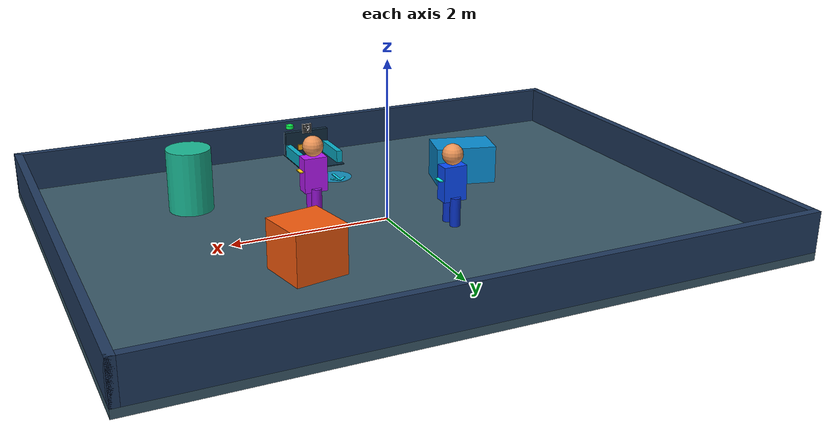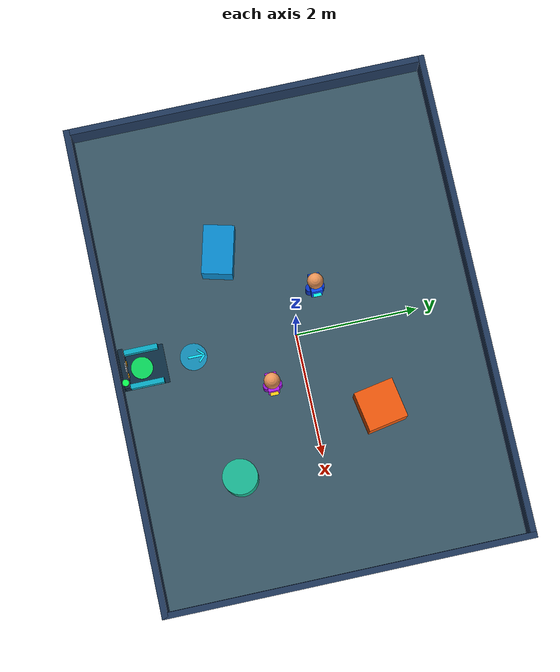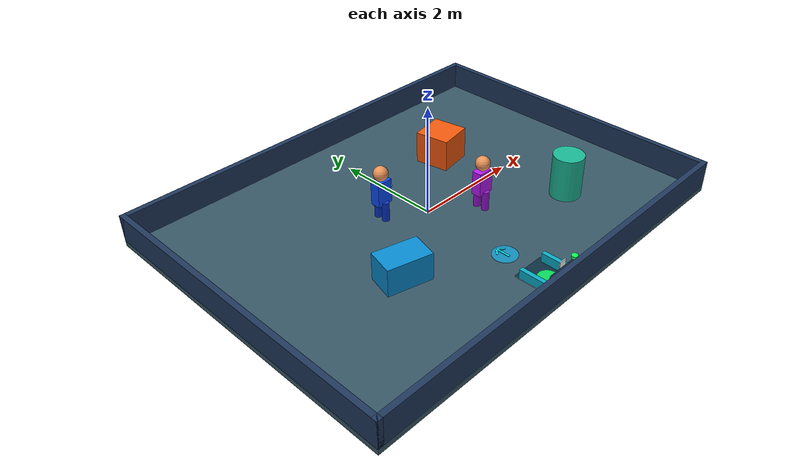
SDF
<?xml version="1.0"?>
<sdf version="1.9">
  <world name="companion_arena">
    <physics name="default_physics" type="ignored">
      <!-- 500 Hz remains stable for this slow rover and frees sensor/render CPU. -->
      <max_step_size>0.002</max_step_size>
      <real_time_factor>1.0</real_time_factor>
    </physics>

    <!-- Core Gazebo systems: physics, spawn/delete commands, and GUI updates. -->
    <plugin filename="gz-sim-physics-system"
            name="gz::sim::systems::Physics"/>
    <plugin filename="gz-sim-sensors-system"
            name="gz::sim::systems::Sensors">
      <render_engine>ogre2</render_engine>
    </plugin>
    <plugin filename="gz-sim-imu-system"
            name="gz::sim::systems::Imu"/>
    <plugin filename="gz-sim-user-commands-system"
            name="gz::sim::systems::UserCommands"/>
    <plugin filename="gz-sim-scene-broadcaster-system"
            name="gz::sim::systems::SceneBroadcaster"/>

    <scene>
      <ambient>0.55 0.55 0.55 1</ambient>
      <background>0.72 0.80 0.86 1</background>
      <shadows>true</shadows>
    </scene>

    <light name="sun" type="directional">
      <cast_shadows>true</cast_shadows>
      <pose>0 0 10 0 0 0</pose>
      <diffuse>0.90 0.90 0.88 1</diffuse>
      <specular>0.25 0.25 0.25 1</specular>
      <direction>-0.45 0.20 -0.87</direction>
    </light>

    <!-- An 8 x 6 metre floor. Its top surface is exactly at z = 0. -->
    <model name="arena_floor">
      <static>true</static>
      <pose>0 0 -0.05 0 0 0</pose>
      <link name="floor_link">
        <collision name="floor_collision">
          <geometry>
            <box>
              <size>8.0 6.0 0.1</size>
            </box>
          </geometry>
        </collision>
        <visual name="floor_visual">
          <geometry>
            <box>
              <size>8.0 6.0 0.1</size>
            </box>
          </geometry>
          <material>
            <ambient>0.17 0.24 0.29 1</ambient>
            <diffuse>0.22 0.34 0.40 1</diffuse>
            <specular>0.03 0.03 0.03 1</specular>
          </material>
        </visual>
      </link>
    </model>

    <!-- Four walls keep the robot inside the test area. -->
    <model name="north_wall">
      <static>true</static>
      <pose>0 2.95 0.25 0 0 0</pose>
      <link name="wall_link">
        <collision name="collision">
          <geometry><box><size>8.0 0.1 0.5</size></box></geometry>
        </collision>
        <visual name="visual">
          <geometry><box><size>8.0 0.1 0.5</size></box></geometry>
          <material>
            <ambient>0.08 0.12 0.20 1</ambient>
            <diffuse>0.12 0.22 0.36 1</diffuse>
          </material>
        </visual>
      </link>
    </model>
    <model name="south_wall">
      <static>true</static>
      <pose>0 -2.95 0.25 0 0 0</pose>
      <link name="wall_link">
        <collision name="collision">
          <geometry><box><size>8.0 0.1 0.5</size></box></geometry>
        </collision>
        <visual name="visual">
          <geometry><box><size>8.0 0.1 0.5</size></box></geometry>
          <material>
            <ambient>0.08 0.12 0.20 1</ambient>
            <diffuse>0.12 0.22 0.36 1</diffuse>
          </material>
        </visual>
      </link>
    </model>
    <model name="east_wall">
      <static>true</static>
      <pose>3.95 0 0.25 0 0 0</pose>
      <link name="wall_link">
        <collision name="collision">
          <geometry><box><size>0.1 6.0 0.5</size></box></geometry>
        </collision>
        <visual name="visual">
          <geometry><box><size>0.1 6.0 0.5</size></box></geometry>
          <material>
            <ambient>0.08 0.12 0.20 1</ambient>
            <diffuse>0.12 0.22 0.36 1</diffuse>
          </material>
        </visual>
      </link>
    </model>
    <model name="west_wall">
      <static>true</static>
      <pose>-3.95 0 0.25 0 0 0</pose>
      <link name="wall_link">
        <collision name="collision">
          <geometry><box><size>0.1 6.0 0.5</size></box></geometry>
        </collision>
        <visual name="visual">
          <geometry><box><size>0.1 6.0 0.5</size></box></geometry>
          <material>
            <ambient>0.08 0.12 0.20 1</ambient>
            <diffuse>0.12 0.22 0.36 1</diffuse>
          </material>
        </visual>
      </link>
    </model>

    <!-- Simple obstacles for later LiDAR, mapping, and navigation tests. -->
    <model name="orange_crate">
      <static>true</static>
      <pose>1.45 1.05 0.30 0 0 0.18</pose>
      <link name="crate_link">
        <collision name="collision">
          <geometry><box><size>0.65 0.65 0.60</size></box></geometry>
        </collision>
        <visual name="visual">
          <geometry><box><size>0.65 0.65 0.60</size></box></geometry>
          <material>
            <ambient>0.70 0.20 0.03 1</ambient>
            <diffuse>0.95 0.35 0.05 1</diffuse>
          </material>
        </visual>
      </link>
    </model>

    <model name="blue_crate">
      <static>true</static>
      <pose>-1.55 -0.95 0.25 0 0 -0.25</pose>
      <link name="crate_link">
        <collision name="collision">
          <geometry><box><size>0.80 0.50 0.50</size></box></geometry>
        </collision>
        <visual name="visual">
          <geometry><box><size>0.80 0.50 0.50</size></box></geometry>
          <material>
            <ambient>0.02 0.30 0.48 1</ambient>
            <diffuse>0.03 0.55 0.82 1</diffuse>
          </material>
        </visual>
      </link>
    </model>

    <model name="round_pillar">
      <static>true</static>
      <pose>2.10 -1.35 0.40 0 0 0</pose>
      <link name="pillar_link">
        <collision name="collision">
          <geometry><cylinder><radius>0.28</radius><length>0.80</length></cylinder></geometry>
        </collision>
        <visual name="visual">
          <geometry><cylinder><radius>0.28</radius><length>0.80</length></cylinder></geometry>
          <material>
            <ambient>0.08 0.42 0.35 1</ambient>
            <diffuse>0.10 0.72 0.58 1</diffuse>
          </material>
        </visual>
      </link>
    </model>

    <model name="moving_pedestrian">
      <static>false</static>
      <allow_auto_disable>false</allow_auto_disable>
      <pose>0.75 -0.55 0.45 0 0 0</pose>
      <!-- An invisible carriage provides the first axis of the X/Y stage. -->
      <link name="x_carriage_link">
        <gravity>false</gravity>
        <inertial>
          <mass>0.10</mass>
          <inertia>
            <ixx>0.001</ixx>
            <iyy>0.001</iyy>
            <izz>0.001</izz>
          </inertia>
        </inertial>
      </link>
      <link name="pedestrian_link">
        <gravity>false</gravity>
        <inertial>
          <mass>20.0</mass>
          <inertia>
            <ixx>1.592</ixx>
            <iyy>1.592</iyy>
            <izz>0.484</izz>
          </inertia>
        </inertial>
        <collision name="collision">
          <geometry>
            <cylinder><radius>0.22</radius><length>0.90</length></cylinder>
          </geometry>
          <surface>
            <friction>
              <ode><mu>0.8</mu><mu2>0.8</mu2></ode>
            </friction>
          </surface>
        </collision>
        <!-- Purple clothing gives the simulated vision detector a real image
             feature while the separate shapes keep the target human-like. -->
        <visual name="torso_visual">
          <pose>0 0 0.08 0 0 0</pose>
          <geometry>
            <box><size>0.30 0.18 0.44</size></box>
          </geometry>
          <material>
            <ambient>0.42 0.04 0.62 1</ambient>
            <diffuse>0.72 0.10 0.96 1</diffuse>
            <specular>0.30 0.12 0.42 1</specular>
          </material>
        </visual>
        <visual name="left_leg_visual">
          <pose>0 0.09 -0.27 0 0 0</pose>
          <geometry>
            <cylinder><radius>0.065</radius><length>0.36</length></cylinder>
          </geometry>
          <material>
            <ambient>0.30 0.03 0.46 1</ambient>
            <diffuse>0.58 0.07 0.82 1</diffuse>
          </material>
        </visual>
        <visual name="right_leg_visual">
          <pose>0 -0.09 -0.27 0 0 0</pose>
          <geometry>
            <cylinder><radius>0.065</radius><length>0.36</length></cylinder>
          </geometry>
          <material>
            <ambient>0.30 0.03 0.46 1</ambient>
            <diffuse>0.58 0.07 0.82 1</diffuse>
          </material>
        </visual>
        <visual name="head_visual">
          <pose>0 0 0.43 0 0 0</pose>
          <geometry><sphere><radius>0.13</radius></sphere></geometry>
          <material>
            <ambient>0.58 0.30 0.16 1</ambient>
            <diffuse>0.92 0.58 0.34 1</diffuse>
          </material>
        </visual>
        <visual name="identity_band">
          <pose>0.156 0 0.13 0 1.5708 0</pose>
          <geometry><box><size>0.012 0.13 0.09</size></box></geometry>
          <material>
            <ambient>0.95 0.62 0.03 1</ambient>
            <diffuse>1.00 0.82 0.08 1</diffuse>
            <emissive>0.20 0.08 0.00 1</emissive>
          </material>
        </visual>
      </link>
      <joint name="pedestrian_x_joint" type="prismatic">
        <parent>world</parent>
        <child>x_carriage_link</child>
        <axis>
          <xyz expressed_in="__model__">1 0 0</xyz>
          <limit>
            <lower>-1.85</lower>
            <upper>0.75</upper>
            <effort>500.0</effort>
            <velocity>0.35</velocity>
          </limit>
          <dynamics>
            <damping>0.2</damping>
          </dynamics>
        </axis>
      </joint>
      <joint name="pedestrian_y_joint" type="prismatic">
        <parent>x_carriage_link</parent>
        <child>pedestrian_link</child>
        <axis>
          <xyz expressed_in="__model__">0 1 0</xyz>
          <limit>
            <!-- The route reaches 0.10 m south and 1.10 m north of the
                 model's initial Y position. Keep a small physical margin. -->
            <lower>-0.15</lower>
            <upper>1.20</upper>
            <effort>500.0</effort>
            <velocity>0.35</velocity>
          </limit>
          <dynamics>
            <damping>0.2</damping>
          </dynamics>
        </axis>
      </joint>
      <plugin
        filename="gz-sim-joint-controller-system"
        name="gz::sim::systems::JointController">
        <joint_name>pedestrian_x_joint</joint_name>
      </plugin>
      <plugin
        filename="gz-sim-joint-controller-system"
        name="gz::sim::systems::JointController">
        <joint_name>pedestrian_y_joint</joint_name>
      </plugin>
    </model>

    <model name="moving_pedestrian_beta">
      <static>false</static>
      <allow_auto_disable>false</allow_auto_disable>
      <pose>-0.65 0.45 0.45 0 0 0</pose>
      <link name="x_carriage_link">
        <gravity>false</gravity>
        <inertial>
          <mass>0.10</mass>
          <inertia>
            <ixx>0.001</ixx>
            <iyy>0.001</iyy>
            <izz>0.001</izz>
          </inertia>
        </inertial>
      </link>
      <link name="pedestrian_link">
        <gravity>false</gravity>
        <inertial>
          <mass>20.0</mass>
          <inertia>
            <ixx>1.592</ixx>
            <iyy>1.592</iyy>
            <izz>0.484</izz>
          </inertia>
        </inertial>
        <collision name="collision">
          <geometry>
            <cylinder><radius>0.22</radius><length>0.90</length></cylinder>
          </geometry>
          <surface>
            <friction>
              <ode><mu>0.8</mu><mu2>0.8</mu2></ode>
            </friction>
          </surface>
        </collision>
        <visual name="torso_visual">
          <pose>0 0 0.08 0 0 0</pose>
          <geometry>
            <box><size>0.30 0.18 0.44</size></box>
          </geometry>
          <material>
            <ambient>0.02 0.12 0.52 1</ambient>
            <diffuse>0.04 0.30 0.98 1</diffuse>
            <specular>0.10 0.22 0.52 1</specular>
          </material>
        </visual>
        <visual name="left_leg_visual">
          <pose>0 0.09 -0.27 0 0 0</pose>
          <geometry>
            <cylinder><radius>0.065</radius><length>0.36</length></cylinder>
          </geometry>
          <material>
            <ambient>0.02 0.08 0.38 1</ambient>
            <diffuse>0.03 0.20 0.78 1</diffuse>
          </material>
        </visual>
        <visual name="right_leg_visual">
          <pose>0 -0.09 -0.27 0 0 0</pose>
          <geometry>
            <cylinder><radius>0.065</radius><length>0.36</length></cylinder>
          </geometry>
          <material>
            <ambient>0.02 0.08 0.38 1</ambient>
            <diffuse>0.03 0.20 0.78 1</diffuse>
          </material>
        </visual>
        <visual name="head_visual">
          <pose>0 0 0.43 0 0 0</pose>
          <geometry><sphere><radius>0.13</radius></sphere></geometry>
          <material>
            <ambient>0.58 0.30 0.16 1</ambient>
            <diffuse>0.92 0.58 0.34 1</diffuse>
          </material>
        </visual>
        <visual name="identity_band">
          <pose>0.156 0 0.13 0 1.5708 0</pose>
          <geometry><box><size>0.012 0.13 0.09</size></box></geometry>
          <material>
            <ambient>0.02 0.90 0.82 1</ambient>
            <diffuse>0.04 1.00 0.92 1</diffuse>
            <emissive>0.00 0.18 0.16 1</emissive>
          </material>
        </visual>
      </link>
      <joint name="pedestrian_beta_x_joint" type="prismatic">
        <parent>world</parent>
        <child>x_carriage_link</child>
        <axis>
          <xyz expressed_in="__model__">1 0 0</xyz>
          <limit>
            <lower>-0.10</lower>
            <upper>1.35</upper>
            <effort>500.0</effort>
            <velocity>0.35</velocity>
          </limit>
          <dynamics><damping>0.2</damping></dynamics>
        </axis>
      </joint>
      <joint name="pedestrian_beta_y_joint" type="prismatic">
        <parent>x_carriage_link</parent>
        <child>pedestrian_link</child>
        <axis>
          <xyz expressed_in="__model__">0 1 0</xyz>
          <limit>
            <lower>-1.05</lower>
            <upper>0.10</upper>
            <effort>500.0</effort>
            <velocity>0.35</velocity>
          </limit>
          <dynamics><damping>0.2</damping></dynamics>
        </axis>
      </joint>
      <plugin
        filename="gz-sim-joint-controller-system"
        name="gz::sim::systems::JointController">
        <joint_name>pedestrian_beta_x_joint</joint_name>
      </plugin>
      <plugin
        filename="gz-sim-joint-controller-system"
        name="gz::sim::systems::JointController">
        <joint_name>pedestrian_beta_y_joint</joint_name>
      </plugin>
    </model>

    <model name="docking_station">
      <static>true</static>
      <pose>0 -2.52 0 0 0 0</pose>
      <link name="dock_link">
        <!-- A visual-only pad keeps the arena floor physically flat. -->
        <visual name="dock_pad">
          <pose>0 0 0.006 0 0 0</pose>
          <geometry><box><size>0.64 0.74 0.012</size></box></geometry>
          <material>
            <ambient>0.03 0.09 0.14 1</ambient>
            <diffuse>0.05 0.18 0.26 1</diffuse>
            <specular>0.18 0.28 0.32 1</specular>
          </material>
        </visual>

        <collision name="backplate_collision">
          <pose>0 -0.30 0.18 0 0 0</pose>
          <geometry><box><size>0.64 0.08 0.36</size></box></geometry>
        </collision>
        <visual name="backplate_visual">
          <pose>0 -0.30 0.18 0 0 0</pose>
          <geometry><box><size>0.64 0.08 0.36</size></box></geometry>
          <material>
            <ambient>0.03 0.08 0.13 1</ambient>
            <diffuse>0.06 0.16 0.24 1</diffuse>
            <specular>0.20 0.32 0.38 1</specular>
          </material>
        </visual>

        <collision name="left_guide_collision">
          <pose>0.28 0 0.09 0 0 0</pose>
          <geometry><box><size>0.08 0.58 0.18</size></box></geometry>
        </collision>
        <visual name="left_guide_visual">
          <pose>0.28 0 0.09 0 0 0</pose>
          <geometry><box><size>0.08 0.58 0.18</size></box></geometry>
          <material>
            <ambient>0.02 0.32 0.40 1</ambient>
            <diffuse>0.03 0.68 0.78 1</diffuse>
            <specular>0.35 0.55 0.62 1</specular>
          </material>
        </visual>

        <collision name="right_guide_collision">
          <pose>-0.28 0 0.09 0 0 0</pose>
          <geometry><box><size>0.08 0.58 0.18</size></box></geometry>
        </collision>
        <visual name="right_guide_visual">
          <pose>-0.28 0 0.09 0 0 0</pose>
          <geometry><box><size>0.08 0.58 0.18</size></box></geometry>
          <material>
            <ambient>0.02 0.32 0.40 1</ambient>
            <diffuse>0.03 0.68 0.78 1</diffuse>
            <specular>0.35 0.55 0.62 1</specular>
          </material>
        </visual>

        <!-- Gold charging contacts on the front face of the backplate. -->
        <visual name="left_contact">
          <pose>0.10 -0.253 0.13 0 0 0</pose>
          <geometry><box><size>0.08 0.015 0.08</size></box></geometry>
          <material>
            <ambient>0.70 0.40 0.04 1</ambient>
            <diffuse>1.00 0.68 0.08 1</diffuse>
            <specular>0.80 0.65 0.25 1</specular>
          </material>
        </visual>
        <visual name="right_contact">
          <pose>-0.10 -0.253 0.13 0 0 0</pose>
          <geometry><box><size>0.08 0.015 0.08</size></box></geometry>
          <material>
            <ambient>0.70 0.40 0.04 1</ambient>
            <diffuse>1.00 0.68 0.08 1</diffuse>
            <specular>0.80 0.65 0.25 1</specular>
          </material>
        </visual>

        <visual name="aruco_white_board">
          <pose>0 -0.252 0.40 0 0 0</pose>
          <geometry><box><size>0.140 0.012 0.140</size></box></geometry>
          <cast_shadows>false</cast_shadows>
          <material>
            <ambient>0.95 0.95 0.95 1</ambient>
            <diffuse>1.00 1.00 1.00 1</diffuse>
            <specular>0.05 0.05 0.05 1</specular>
          </material>
        </visual>
        <visual name="aruco_black_r0_c0">
          <pose>0.050 -0.243 0.45 0 0 0</pose>
          <geometry><box><size>0.020 0.004 0.020</size></box></geometry>
          <cast_shadows>false</cast_shadows>
          <material>
            <ambient>0.002 0.002 0.002 1</ambient>
            <diffuse>0.005 0.005 0.005 1</diffuse>
            <specular>0 0 0 1</specular>
          </material>
        </visual>
        <visual name="aruco_black_r0_c1">
          <pose>0.030 -0.243 0.45 0 0 0</pose>
          <geometry><box><size>0.020 0.004 0.020</size></box></geometry>
          <cast_shadows>false</cast_shadows>
          <material>
            <ambient>0.002 0.002 0.002 1</ambient>
            <diffuse>0.005 0.005 0.005 1</diffuse>
            <specular>0 0 0 1</specular>
          </material>
        </visual>
        <visual name="aruco_black_r0_c2">
          <pose>0.010 -0.243 0.45 0 0 0</pose>
          <geometry><box><size>0.020 0.004 0.020</size></box></geometry>
          <cast_shadows>false</cast_shadows>
          <material>
            <ambient>0.002 0.002 0.002 1</ambient>
            <diffuse>0.005 0.005 0.005 1</diffuse>
            <specular>0 0 0 1</specular>
          </material>
        </visual>
        <visual name="aruco_black_r0_c3">
          <pose>-0.010 -0.243 0.45 0 0 0</pose>
          <geometry><box><size>0.020 0.004 0.020</size></box></geometry>
          <cast_shadows>false</cast_shadows>
          <material>
            <ambient>0.002 0.002 0.002 1</ambient>
            <diffuse>0.005 0.005 0.005 1</diffuse>
            <specular>0 0 0 1</specular>
          </material>
        </visual>
        <visual name="aruco_black_r0_c4">
          <pose>-0.030 -0.243 0.45 0 0 0</pose>
          <geometry><box><size>0.020 0.004 0.020</size></box></geometry>
          <cast_shadows>false</cast_shadows>
          <material>
            <ambient>0.002 0.002 0.002 1</ambient>
            <diffuse>0.005 0.005 0.005 1</diffuse>
            <specular>0 0 0 1</specular>
          </material>
        </visual>
        <visual name="aruco_black_r0_c5">
          <pose>-0.050 -0.243 0.45 0 0 0</pose>
          <geometry><box><size>0.020 0.004 0.020</size></box></geometry>
          <cast_shadows>false</cast_shadows>
          <material>
            <ambient>0.002 0.002 0.002 1</ambient>
            <diffuse>0.005 0.005 0.005 1</diffuse>
            <specular>0 0 0 1</specular>
          </material>
        </visual>
        <visual name="aruco_black_r1_c0">
          <pose>0.050 -0.243 0.43 0 0 0</pose>
          <geometry><box><size>0.020 0.004 0.020</size></box></geometry>
          <cast_shadows>false</cast_shadows>
          <material>
            <ambient>0.002 0.002 0.002 1</ambient>
            <diffuse>0.005 0.005 0.005 1</diffuse>
            <specular>0 0 0 1</specular>
          </material>
        </visual>
        <visual name="aruco_black_r1_c2">
          <pose>0.010 -0.243 0.43 0 0 0</pose>
          <geometry><box><size>0.020 0.004 0.020</size></box></geometry>
          <cast_shadows>false</cast_shadows>
          <material>
            <ambient>0.002 0.002 0.002 1</ambient>
            <diffuse>0.005 0.005 0.005 1</diffuse>
            <specular>0 0 0 1</specular>
          </material>
        </visual>
        <visual name="aruco_black_r1_c5">
          <pose>-0.050 -0.243 0.43 0 0 0</pose>
          <geometry><box><size>0.020 0.004 0.020</size></box></geometry>
          <cast_shadows>false</cast_shadows>
          <material>
            <ambient>0.002 0.002 0.002 1</ambient>
            <diffuse>0.005 0.005 0.005 1</diffuse>
            <specular>0 0 0 1</specular>
          </material>
        </visual>
        <visual name="aruco_black_r2_c0">
          <pose>0.050 -0.243 0.41 0 0 0</pose>
          <geometry><box><size>0.020 0.004 0.020</size></box></geometry>
          <cast_shadows>false</cast_shadows>
          <material>
            <ambient>0.002 0.002 0.002 1</ambient>
            <diffuse>0.005 0.005 0.005 1</diffuse>
            <specular>0 0 0 1</specular>
          </material>
        </visual>
        <visual name="aruco_black_r2_c1">
          <pose>0.030 -0.243 0.41 0 0 0</pose>
          <geometry><box><size>0.020 0.004 0.020</size></box></geometry>
          <cast_shadows>false</cast_shadows>
          <material>
            <ambient>0.002 0.002 0.002 1</ambient>
            <diffuse>0.005 0.005 0.005 1</diffuse>
            <specular>0 0 0 1</specular>
          </material>
        </visual>
        <visual name="aruco_black_r2_c3">
          <pose>-0.010 -0.243 0.41 0 0 0</pose>
          <geometry><box><size>0.020 0.004 0.020</size></box></geometry>
          <cast_shadows>false</cast_shadows>
          <material>
            <ambient>0.002 0.002 0.002 1</ambient>
            <diffuse>0.005 0.005 0.005 1</diffuse>
            <specular>0 0 0 1</specular>
          </material>
        </visual>
        <visual name="aruco_black_r2_c5">
          <pose>-0.050 -0.243 0.41 0 0 0</pose>
          <geometry><box><size>0.020 0.004 0.020</size></box></geometry>
          <cast_shadows>false</cast_shadows>
          <material>
            <ambient>0.002 0.002 0.002 1</ambient>
            <diffuse>0.005 0.005 0.005 1</diffuse>
            <specular>0 0 0 1</specular>
          </material>
        </visual>
        <visual name="aruco_black_r3_c0">
          <pose>0.050 -0.243 0.39 0 0 0</pose>
          <geometry><box><size>0.020 0.004 0.020</size></box></geometry>
          <cast_shadows>false</cast_shadows>
          <material>
            <ambient>0.002 0.002 0.002 1</ambient>
            <diffuse>0.005 0.005 0.005 1</diffuse>
            <specular>0 0 0 1</specular>
          </material>
        </visual>
        <visual name="aruco_black_r3_c1">
          <pose>0.030 -0.243 0.39 0 0 0</pose>
          <geometry><box><size>0.020 0.004 0.020</size></box></geometry>
          <cast_shadows>false</cast_shadows>
          <material>
            <ambient>0.002 0.002 0.002 1</ambient>
            <diffuse>0.005 0.005 0.005 1</diffuse>
            <specular>0 0 0 1</specular>
          </material>
        </visual>
        <visual name="aruco_black_r3_c2">
          <pose>0.010 -0.243 0.39 0 0 0</pose>
          <geometry><box><size>0.020 0.004 0.020</size></box></geometry>
          <cast_shadows>false</cast_shadows>
          <material>
            <ambient>0.002 0.002 0.002 1</ambient>
            <diffuse>0.005 0.005 0.005 1</diffuse>
            <specular>0 0 0 1</specular>
          </material>
        </visual>
        <visual name="aruco_black_r3_c5">
          <pose>-0.050 -0.243 0.39 0 0 0</pose>
          <geometry><box><size>0.020 0.004 0.020</size></box></geometry>
          <cast_shadows>false</cast_shadows>
          <material>
            <ambient>0.002 0.002 0.002 1</ambient>
            <diffuse>0.005 0.005 0.005 1</diffuse>
            <specular>0 0 0 1</specular>
          </material>
        </visual>
        <visual name="aruco_black_r4_c0">
          <pose>0.050 -0.243 0.37 0 0 0</pose>
          <geometry><box><size>0.020 0.004 0.020</size></box></geometry>
          <cast_shadows>false</cast_shadows>
          <material>
            <ambient>0.002 0.002 0.002 1</ambient>
            <diffuse>0.005 0.005 0.005 1</diffuse>
            <specular>0 0 0 1</specular>
          </material>
        </visual>
        <visual name="aruco_black_r4_c1">
          <pose>0.030 -0.243 0.37 0 0 0</pose>
          <geometry><box><size>0.020 0.004 0.020</size></box></geometry>
          <cast_shadows>false</cast_shadows>
          <material>
            <ambient>0.002 0.002 0.002 1</ambient>
            <diffuse>0.005 0.005 0.005 1</diffuse>
            <specular>0 0 0 1</specular>
          </material>
        </visual>
        <visual name="aruco_black_r4_c2">
          <pose>0.010 -0.243 0.37 0 0 0</pose>
          <geometry><box><size>0.020 0.004 0.020</size></box></geometry>
          <cast_shadows>false</cast_shadows>
          <material>
            <ambient>0.002 0.002 0.002 1</ambient>
            <diffuse>0.005 0.005 0.005 1</diffuse>
            <specular>0 0 0 1</specular>
          </material>
        </visual>
        <visual name="aruco_black_r4_c4">
          <pose>-0.030 -0.243 0.37 0 0 0</pose>
          <geometry><box><size>0.020 0.004 0.020</size></box></geometry>
          <cast_shadows>false</cast_shadows>
          <material>
            <ambient>0.002 0.002 0.002 1</ambient>
            <diffuse>0.005 0.005 0.005 1</diffuse>
            <specular>0 0 0 1</specular>
          </material>
        </visual>
        <visual name="aruco_black_r4_c5">
          <pose>-0.050 -0.243 0.37 0 0 0</pose>
          <geometry><box><size>0.020 0.004 0.020</size></box></geometry>
          <cast_shadows>false</cast_shadows>
          <material>
            <ambient>0.002 0.002 0.002 1</ambient>
            <diffuse>0.005 0.005 0.005 1</diffuse>
            <specular>0 0 0 1</specular>
          </material>
        </visual>
        <visual name="aruco_black_r5_c0">
          <pose>0.050 -0.243 0.35 0 0 0</pose>
          <geometry><box><size>0.020 0.004 0.020</size></box></geometry>
          <cast_shadows>false</cast_shadows>
          <material>
            <ambient>0.002 0.002 0.002 1</ambient>
            <diffuse>0.005 0.005 0.005 1</diffuse>
            <specular>0 0 0 1</specular>
          </material>
        </visual>
        <visual name="aruco_black_r5_c1">
          <pose>0.030 -0.243 0.35 0 0 0</pose>
          <geometry><box><size>0.020 0.004 0.020</size></box></geometry>
          <cast_shadows>false</cast_shadows>
          <material>
            <ambient>0.002 0.002 0.002 1</ambient>
            <diffuse>0.005 0.005 0.005 1</diffuse>
            <specular>0 0 0 1</specular>
          </material>
        </visual>
        <visual name="aruco_black_r5_c2">
          <pose>0.010 -0.243 0.35 0 0 0</pose>
          <geometry><box><size>0.020 0.004 0.020</size></box></geometry>
          <cast_shadows>false</cast_shadows>
          <material>
            <ambient>0.002 0.002 0.002 1</ambient>
            <diffuse>0.005 0.005 0.005 1</diffuse>
            <specular>0 0 0 1</specular>
          </material>
        </visual>
        <visual name="aruco_black_r5_c3">
          <pose>-0.010 -0.243 0.35 0 0 0</pose>
          <geometry><box><size>0.020 0.004 0.020</size></box></geometry>
          <cast_shadows>false</cast_shadows>
          <material>
            <ambient>0.002 0.002 0.002 1</ambient>
            <diffuse>0.005 0.005 0.005 1</diffuse>
            <specular>0 0 0 1</specular>
          </material>
        </visual>
        <visual name="aruco_black_r5_c4">
          <pose>-0.030 -0.243 0.35 0 0 0</pose>
          <geometry><box><size>0.020 0.004 0.020</size></box></geometry>
          <cast_shadows>false</cast_shadows>
          <material>
            <ambient>0.002 0.002 0.002 1</ambient>
            <diffuse>0.005 0.005 0.005 1</diffuse>
            <specular>0 0 0 1</specular>
          </material>
        </visual>
        <visual name="aruco_black_r5_c5">
          <pose>-0.050 -0.243 0.35 0 0 0</pose>
          <geometry><box><size>0.020 0.004 0.020</size></box></geometry>
          <cast_shadows>false</cast_shadows>
          <material>
            <ambient>0.002 0.002 0.002 1</ambient>
            <diffuse>0.005 0.005 0.005 1</diffuse>
            <specular>0 0 0 1</specular>
          </material>
        </visual>

        <visual name="status_light">
          <pose>0.24 -0.30 0.44 0 0 0</pose>
          <geometry><cylinder><radius>0.055</radius><length>0.05</length></cylinder></geometry>
          <material>
            <ambient>0.02 0.55 0.18 1</ambient>
            <diffuse>0.04 1.00 0.32 1</diffuse>
            <emissive>0.01 0.35 0.08 1</emissive>
          </material>
        </visual>

        <!-- Green centre target corresponds to dock_pose in docking.yaml. -->
        <visual name="dock_pose_marker">
          <pose>0 -0.03 0.014 0 0 0</pose>
          <geometry><cylinder><radius>0.18</radius><length>0.012</length></cylinder></geometry>
          <material>
            <ambient>0.02 0.42 0.20 1</ambient>
            <diffuse>0.03 0.85 0.36 1</diffuse>
            <emissive>0.01 0.18 0.05 1</emissive>
          </material>
        </visual>
      </link>
    </model>

    <!-- Cyan floor marker for staging_pose: (0, -1.70, pi/2). -->
    <model name="dock_staging_marker">
      <static>true</static>
      <pose>0 -1.70 0 0 0 0</pose>
      <link name="marker_link">
        <visual name="staging_circle">
          <pose>0 0 0.006 0 0 0</pose>
          <geometry><cylinder><radius>0.22</radius><length>0.010</length></cylinder></geometry>
          <transparency>0.35</transparency>
          <material>
            <ambient>0.02 0.42 0.60 1</ambient>
            <diffuse>0.04 0.72 0.95 1</diffuse>
            <emissive>0.01 0.16 0.24 1</emissive>
          </material>
        </visual>
        <!-- Arrow points north, matching yaw = pi/2. -->
        <visual name="arrow_shaft">
          <pose>0 0.03 0.014 0 0 0</pose>
          <geometry><box><size>0.035 0.24 0.012</size></box></geometry>
          <material>
            <ambient>0.02 0.62 0.78 1</ambient>
            <diffuse>0.05 0.90 1.00 1</diffuse>
          </material>
        </visual>
        <visual name="arrow_head_left">
          <pose>-0.05 0.13 0.014 0 0 -0.7854</pose>
          <geometry><box><size>0.03 0.14 0.012</size></box></geometry>
          <material>
            <ambient>0.02 0.62 0.78 1</ambient>
            <diffuse>0.05 0.90 1.00 1</diffuse>
          </material>
        </visual>
        <visual name="arrow_head_right">
          <pose>0.05 0.13 0.014 0 0 0.7854</pose>
          <geometry><box><size>0.03 0.14 0.012</size></box></geometry>
          <material>
            <ambient>0.02 0.62 0.78 1</ambient>
            <diffuse>0.05 0.90 1.00 1</diffuse>
          </material>
        </visual>
      </link>
    </model>
  </world>
</sdf>
